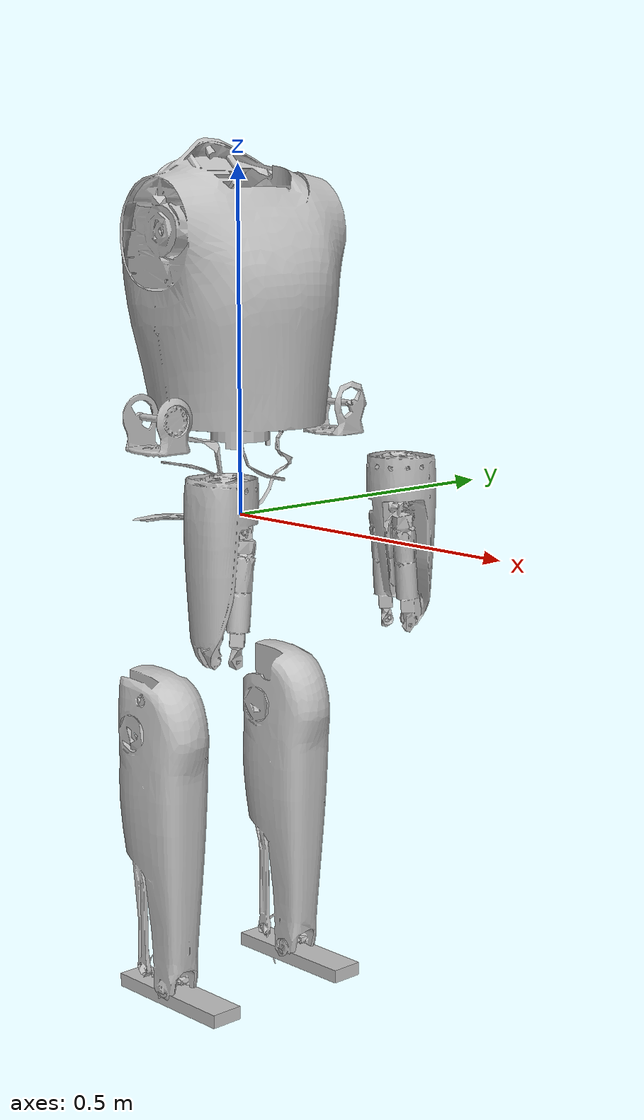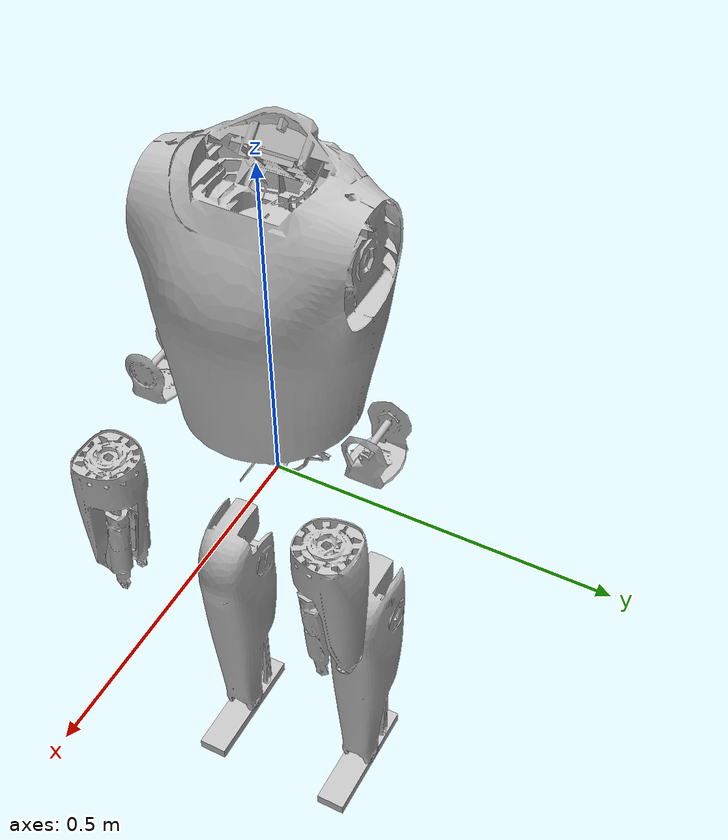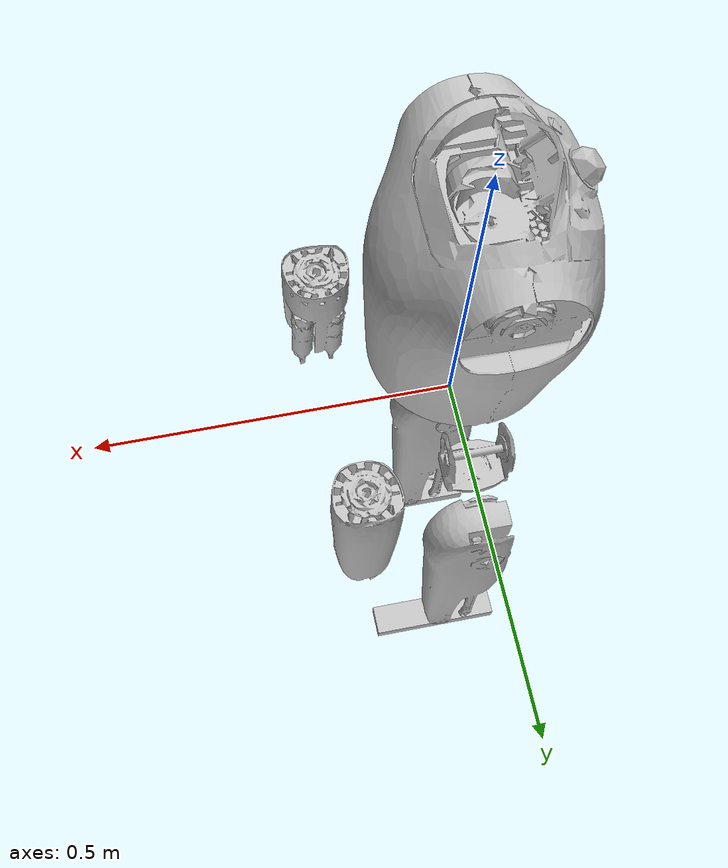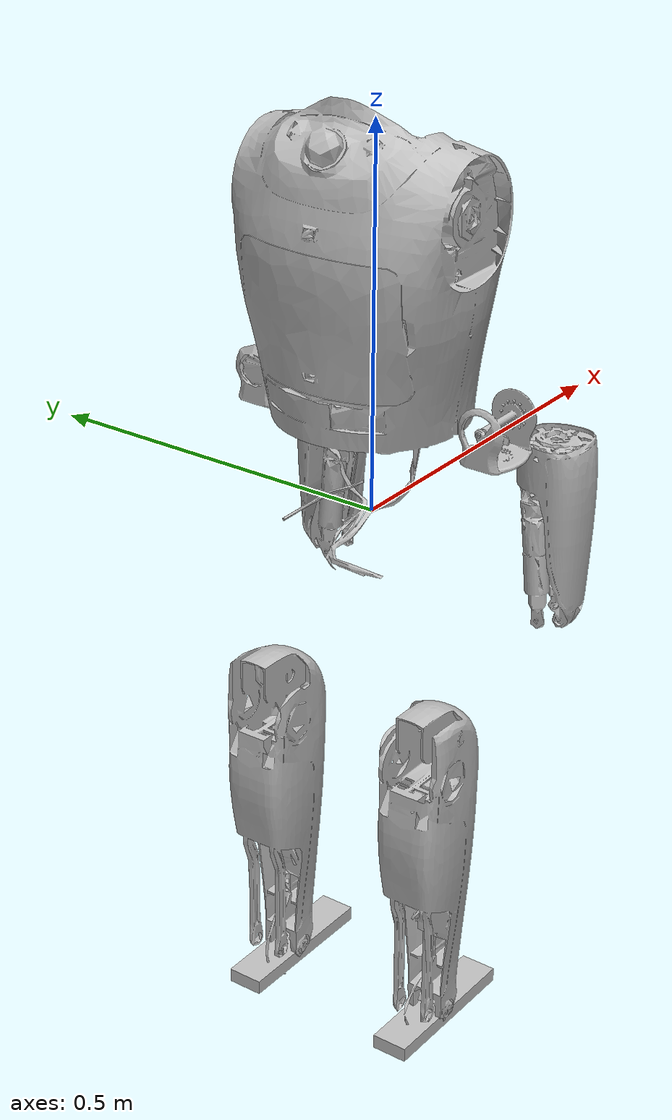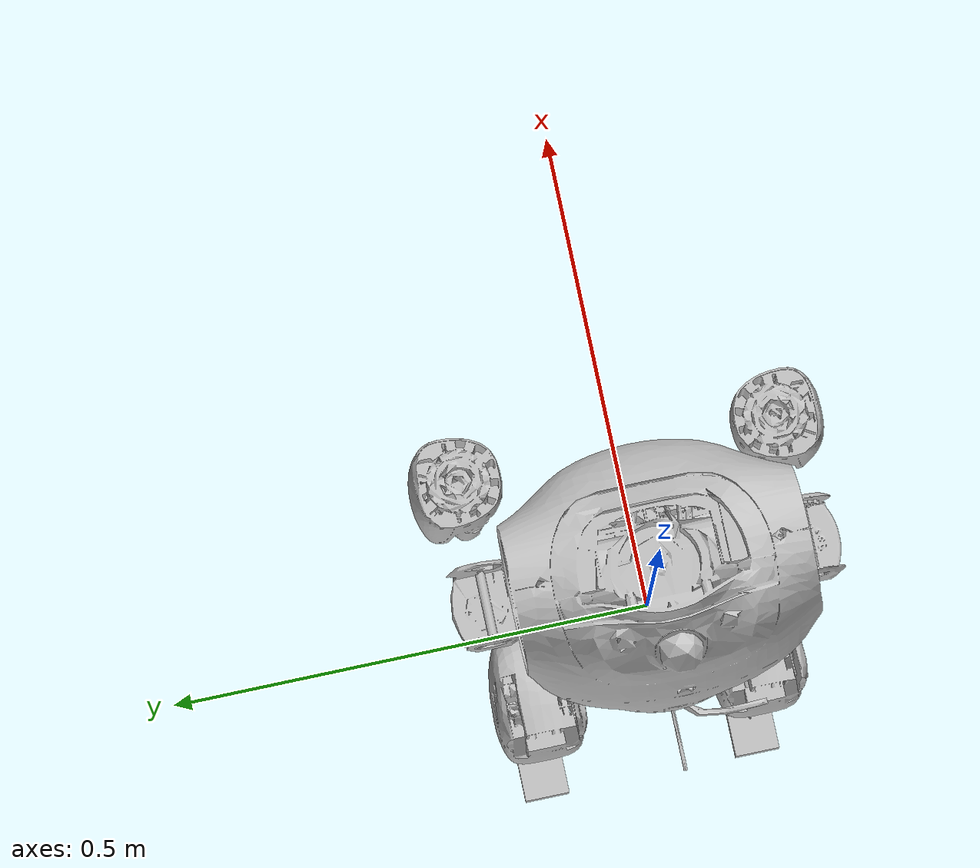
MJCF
<?xml version='1.0' encoding='utf-8'?>
<mujoco model="MagicBotZ1">
  <compiler angle="radian" boundmass="1e-06" boundinertia="1e-08" meshdir=".." />
  <asset>
    <mesh name="mesh_5" content_type="model/stl" file="meshes/LINK_KNEE_PITCH_L.STL" />
    <mesh name="mesh_12" content_type="model/stl" file="meshes/LINK_KNEE_PITCH_R.STL" />
    <mesh name="mesh_16" content_type="model/stl" file="meshes/link_wy.STL" />
    <mesh name="mesh_21" content_type="model/stl" file="meshes/link_la4.STL" />
    <mesh name="mesh_23" content_type="model/stl" file="meshes/link_la5.STL" />
    <mesh name="mesh_28" content_type="model/stl" file="meshes/link_ra4.STL" />
    <mesh name="mesh_30" content_type="model/stl" file="meshes/link_ra5.STL" />
  </asset>
  <worldbody>
    <body name="pelvis">
      <inertial pos="0.00534252 0.000187711 0.208968" quat="0.999962 -5.64612e-06 0.00868398 -8.7174e-05" mass="14.0849" diaginertia="0.434191 0.412001 0.0568109" />
      <joint type="free" />
      <geom pos="0 0 0.0619" type="mesh" rgba="0.75294 0.75294 0.75294 1" mesh="mesh_16" />
      <body name="LINK_HIP_PITCH_L" pos="0 0.06875 0">
        <inertial pos="-0.0002 0.0495 -0.0399" quat="0.951641 0.307212 0 0" mass="1.5089" diaginertia="0.002 0.00181623 0.00118377" />
        <joint name="JOINT_HIP_PITCH_L" pos="0 0 0" axis="0 1 0" range="-2.7925 2.7925" actuatorfrcrange="-120 120" />
        <body name="LINK_HIP_ROLL_L" pos="0 0.053724 -0.045579">
          <inertial pos="0.0066 -0.0001 -0.0869" quat="0.968946 0 0.247273 0" mass="1.9215" diaginertia="0.00388217 0.0036 0.00221783" />
          <joint name="JOINT_HIP_ROLL_L" pos="0 0 0" axis="1 0 0" range="-0.524 2.967" actuatorfrcrange="-120 120" />
          <body name="LINK_HIP_YAW_L" pos="-0.00084052 0 -0.1255">
            <inertial pos="-0.0188 -0.0041 -0.0763" quat="0.97117 -0.0537438 0.205083 -0.109001" mass="0.9002" diaginertia="0.00401624 0.00379582 0.00158794" />
            <joint name="JOINT_HIP_YAW_L" pos="0 0 0" axis="0 0 1" range="-2.7925 2.7925" actuatorfrcrange="-120 120" />
            <body name="LINK_KNEE_PITCH_L" pos="-0.052111 0 -0.13729">
              <inertial pos="0.0009 -0.0007 -0.101" quat="0.70981 -3.95743e-05 -0.00819614 0.704345" mass="3.7275" diaginertia="0.0412046 0.0406046 0.00639073" />
              <joint name="JOINT_KNEE_PITCH_L" pos="0 0 0" axis="0 1 0" range="0 2.653" actuatorfrcrange="-120 120" />
              <geom type="mesh" rgba="0.75294 0.75294 0.75294 1" mesh="mesh_5" />
              <body name="LINK_ANKLE_PITCH_L" pos="0 0 -0.34">
                <inertial pos="0.00094063 5.0401e-07 -0.0083154" quat="0.5 0.5 0.5 0.5" mass="0.048544" diaginertia="1.12e-05 1.1e-05 1.033e-05" />
                <joint name="JOINT_ANKLE_PITCH_L" pos="0 0 0" axis="0 1 0" range="-0.873 0.524" actuatorfrcrange="-50 50" />
                <body name="LINK_ANKLE_ROLL_L" pos="0 0 -0.018">
                  <inertial pos="0.0413161 0.000482409 -0.031752" quat="0 0.724505 0 0.68927" mass="0.701902" diaginertia="0.00240502 0.00230003 0.000395033" />
                  <joint name="JOINT_ANKLE_ROLL_L" pos="0 0 0" axis="1 0 0" range="-0.262 0.262" actuatorfrcrange="-50 50" />
                  <geom size="0.10811 0.025 0.01" pos="0.0441 0 -0.04476" type="box" rgba="0.75294 0.75294 0.75294 1" />
                </body>
              </body>
            </body>
          </body>
        </body>
      </body>
      <body name="LINK_HIP_PITCH_R" pos="0 -0.06875 0">
        <inertial pos="-0.0002 -0.0492 -0.0399" quat="0.951641 -0.307212 0 0" mass="1.5089" diaginertia="0.002 0.00181623 0.00118377" />
        <joint name="JOINT_HIP_PITCH_R" pos="0 0 0" axis="0 1 0" range="-2.7925 2.7925" actuatorfrcrange="-120 120" />
        <body name="LINK_HIP_ROLL_R" pos="0 -0.053724 -0.045579">
          <inertial pos="0.0069 0.0029 -0.0869" quat="0.968946 0 0.247273 0" mass="1.9215" diaginertia="0.00388217 0.0036 0.00221783" />
          <joint name="JOINT_HIP_ROLL_R" pos="0 0 0" axis="1 0 0" range="-2.967 0.524" actuatorfrcrange="-120 120" />
          <body name="LINK_HIP_YAW_R" pos="-0.00050599 0.0029213 -0.12555">
            <inertial pos="-0.0188 0.0027 -0.0763" quat="0.97117 0.0537438 0.205083 0.109001" mass="0.9002" diaginertia="0.00401624 0.00379582 0.00158794" />
            <joint name="JOINT_HIP_YAW_R" pos="0 0 0" axis="0 0 1" range="-2.7925 2.7925" actuatorfrcrange="-120 120" />
            <body name="LINK_KNEE_PITCH_R" pos="-0.052111 0 -0.13729">
              <inertial pos="0.0009 0.0009 -0.101" quat="0.705029 -0.00718436 -0.00106635 0.709141" mass="3.7292" diaginertia="0.0412026 0.0406047 0.00639274" />
              <joint name="JOINT_KNEE_PITCH_R" pos="0 0 0" axis="0 1 0" range="0 2.653" actuatorfrcrange="-120 120" />
              <geom type="mesh" rgba="0.75294 0.75294 0.75294 1" mesh="mesh_12" />
              <body name="LINK_ANKLE_PITCH_R" pos="0 0 -0.34">
                <inertial pos="0.0009 0 -0.0083" quat="0.5 0.5 0.5 0.5" mass="0.048544" diaginertia="1.12e-05 1.1e-05 1.033e-05" />
                <joint name="JOINT_ANKLE_PITCH_R" pos="0 0 0" axis="0 1 0" range="-0.873 0.524" actuatorfrcrange="-50 50" />
                <body name="LINK_ANKLE_ROLL_R" pos="0 0 -0.018">
                  <inertial pos="0.0412941 -0.0010615 -0.031752" quat="0 0.724505 0 0.68927" mass="0.701832" diaginertia="0.00240502 0.00230003 0.000395033" />
                  <joint name="JOINT_ANKLE_ROLL_R" pos="0 0 0" axis="1 0 0" range="-0.262 0.262" actuatorfrcrange="-50 50" />
                  <geom size="0.10811 0.025 0.01" pos="0.0441 0 -0.04476" type="box" rgba="0.75294 0.75294 0.75294 1" />
                </body>
              </body>
            </body>
          </body>
        </body>
      </body>
      <body name="link_la1" pos="0 0.11963 0.3827">
        <inertial pos="-0.0886769 0.0320405 -0.000580186" quat="0.198081 0.820061 0.401042 0.356972" mass="3.78468" diaginertia="0.06383 0.0616676 0.015242" />
        <joint name="joint_la1" pos="0 0 0" axis="0 0.992546 -0.12187" range="-2.88 2.88" actuatorfrcrange="-50 50" />
        <geom pos="0.01924 0.047187 -0.228786" quat="1 0 0 0" type="mesh" rgba="0.75294 0.75294 0.75294 1" mesh="mesh_21" />
        <geom pos="0.15724 0.047187 -0.246201" quat="1 0 0 0" type="mesh" rgba="0.75294 0.75294 0.75294 1" mesh="mesh_23" />
      </body>
      <body name="link_ra1" pos="0 -0.11963 0.3827">
        <inertial pos="-0.0752118 0.0103563 -0.0433094" quat="0.413635 0.732493 0.300593 0.449448" mass="3.79649" diaginertia="0.0704944 0.0655777 0.0148175" />
        <joint name="joint_ra1" pos="0 0 0" axis="0 0.992546 -0.12187" range="-2.88 2.88" actuatorfrcrange="-50 50" />
        <geom pos="0.01924 -0.047187 -0.228786" quat="1 0 0 0" type="mesh" rgba="0.75294 0.75294 0.75294 1" mesh="mesh_28" />
        <geom pos="0.15724 -0.047187 -0.246201" quat="1 0 0 0" type="mesh" rgba="0.75294 0.75294 0.75294 1" mesh="mesh_30" />
      </body>
    </body>
  </worldbody>
</mujoco>
